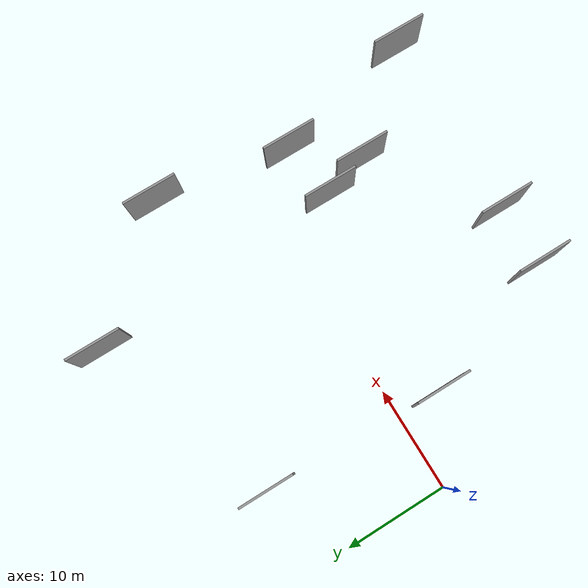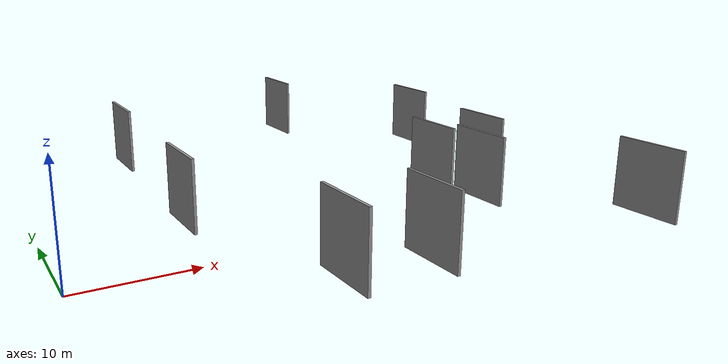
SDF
<sdf version="1.6">
 <world name="default">
  <scene>
   <sky><clouds><speed>12</speed></clouds></sky>
   <ambient>0.4 0.4 0.4 1</ambient>
   <background>0.7 0.7 0.7 1</background>
   <shadows>1</shadows>
  </scene>
  <gravity>0 0 -9.8066</gravity>
  <magnetic_field>6e-06 2.3e-05 -4.2e-05</magnetic_field>
  <physics default="0" name="default_physics" type="ode">
   <ode>
    <solver>
     <type>quick</type>
     <iters>10</iters>
     <sor>1.0</sor>
     <use_dynamic_moi_rescaling>0</use_dynamic_moi_rescaling>
    </solver>
    <constraints>
     <cfm>0</cfm>
     <erp>0.2</erp>
     <contact_max_correcting_vel>100</contact_max_correcting_vel>
     <contact_surface_layer>0.001</contact_surface_layer>
    </constraints>
   </ode>
   <max_step_size>0.004</max_step_size>
   <real_time_factor>1</real_time_factor>
   <real_time_update_rate>250</real_time_update_rate>
  </physics>
  <light name="sun" type="directional">
   <pose>0 0 10 0 0 0</pose>
   <diffuse>0.8 0.8 0.8 1</diffuse>
   <specular>0.2 0.2 0.2 1</specular>
   <attenuation>
    <range>1000</range>
    <constant>0.9</constant>
    <linear>0.01</linear>
    <quadratic>0.001</quadratic>
   </attenuation>
   <direction>-0.5 0.1 -0.9</direction>
  </light>
  <model name="grey_wall_1">
   <static>1</static>
   <pose>8.0669 12.9907 5.0 0.000000 0.000000 1.570796</pose>
   <link name="link">
    <pose>0 0 2.50 0 0 0</pose>
    <collision name="collision"><geometry><box><size>5.00 0.2 5.00</size></box></geometry></collision>
    <visual name="visual">
     <cast_shadows>0</cast_shadows>
     <geometry><box><size>5.00 0.2 5.00</size></box></geometry>
     <material>
      <script>
       <uri>model://grey_wall/materials/scripts</uri>
       <uri>model://grey_wall/materials/textures</uri>
       <name>vrc/grey_wall</name>
      </script>
     </material>
    </visual>
   </link>
  </model>
  <model name="grey_wall_2">
   <static>1</static>
   <pose>34.4512 8.5752 5.0 0.000000 0.000000 1.570796</pose>
   <link name="link">
    <pose>0 0 2.50 0 0 0</pose>
    <collision name="collision"><geometry><box><size>5.00 0.2 5.00</size></box></geometry></collision>
    <visual name="visual">
     <cast_shadows>0</cast_shadows>
     <geometry><box><size>5.00 0.2 5.00</size></box></geometry>
     <material>
      <script>
       <uri>model://grey_wall/materials/scripts</uri>
       <uri>model://grey_wall/materials/textures</uri>
       <name>vrc/grey_wall</name>
      </script>
     </material>
    </visual>
   </link>
  </model>
  <model name="grey_wall_3">
   <static>1</static>
   <pose>26.9604 -4.7573 5.0 0.000000 0.000000 1.570796</pose>
   <link name="link">
    <pose>0 0 2.50 0 0 0</pose>
    <collision name="collision"><geometry><box><size>5.00 0.2 5.00</size></box></geometry></collision>
    <visual name="visual">
     <cast_shadows>0</cast_shadows>
     <geometry><box><size>5.00 0.2 5.00</size></box></geometry>
     <material>
      <script>
       <uri>model://grey_wall/materials/scripts</uri>
       <uri>model://grey_wall/materials/textures</uri>
       <name>vrc/grey_wall</name>
      </script>
     </material>
    </visual>
   </link>
  </model>
  <model name="grey_wall_4">
   <static>1</static>
   <pose>17.9363 -16.5848 5.0 0.000000 0.000000 1.570796</pose>
   <link name="link">
    <pose>0 0 2.50 0 0 0</pose>
    <collision name="collision"><geometry><box><size>5.00 0.2 5.00</size></box></geometry></collision>
    <visual name="visual">
     <cast_shadows>0</cast_shadows>
     <geometry><box><size>5.00 0.2 5.00</size></box></geometry>
     <material>
      <script>
       <uri>model://grey_wall/materials/scripts</uri>
       <uri>model://grey_wall/materials/textures</uri>
       <name>vrc/grey_wall</name>
      </script>
     </material>
    </visual>
   </link>
  </model>
  <model name="grey_wall_5">
   <static>1</static>
   <pose>12.1232 -16.4571 5.0 0.000000 0.000000 1.570796</pose>
   <link name="link">
    <pose>0 0 2.50 0 0 0</pose>
    <collision name="collision"><geometry><box><size>5.00 0.2 5.00</size></box></geometry></collision>
    <visual name="visual">
     <cast_shadows>0</cast_shadows>
     <geometry><box><size>5.00 0.2 5.00</size></box></geometry>
     <material>
      <script>
       <uri>model://grey_wall/materials/scripts</uri>
       <uri>model://grey_wall/materials/textures</uri>
       <name>vrc/grey_wall</name>
      </script>
     </material>
    </visual>
   </link>
  </model>
  <model name="grey_wall_6">
   <static>1</static>
   <pose>35.6600 -17.2151 5.0 0.000000 0.000000 1.570796</pose>
   <link name="link">
    <pose>0 0 2.50 0 0 0</pose>
    <collision name="collision"><geometry><box><size>5.00 0.2 5.00</size></box></geometry></collision>
    <visual name="visual">
     <cast_shadows>0</cast_shadows>
     <geometry><box><size>5.00 0.2 5.00</size></box></geometry>
     <material>
      <script>
       <uri>model://grey_wall/materials/scripts</uri>
       <uri>model://grey_wall/materials/textures</uri>
       <name>vrc/grey_wall</name>
      </script>
     </material>
    </visual>
   </link>
  </model>
  <model name="grey_wall_7">
   <static>1</static>
   <pose>28.1884 -8.6883 5.0 0.000000 0.000000 1.570796</pose>
   <link name="link">
    <pose>0 0 2.50 0 0 0</pose>
    <collision name="collision"><geometry><box><size>5.00 0.2 5.00</size></box></geometry></collision>
    <visual name="visual">
     <cast_shadows>0</cast_shadows>
     <geometry><box><size>5.00 0.2 5.00</size></box></geometry>
     <material>
      <script>
       <uri>model://grey_wall/materials/scripts</uri>
       <uri>model://grey_wall/materials/textures</uri>
       <name>vrc/grey_wall</name>
      </script>
     </material>
    </visual>
   </link>
  </model>
  <model name="grey_wall_8">
   <static>1</static>
   <pose>25.4313 18.9708 5.0 0.000000 0.000000 1.570796</pose>
   <link name="link">
    <pose>0 0 2.50 0 0 0</pose>
    <collision name="collision"><geometry><box><size>5.00 0.2 5.00</size></box></geometry></collision>
    <visual name="visual">
     <cast_shadows>0</cast_shadows>
     <geometry><box><size>5.00 0.2 5.00</size></box></geometry>
     <material>
      <script>
       <uri>model://grey_wall/materials/scripts</uri>
       <uri>model://grey_wall/materials/textures</uri>
       <name>vrc/grey_wall</name>
      </script>
     </material>
    </visual>
   </link>
  </model>
  <model name="grey_wall_9">
   <static>1</static>
   <pose>32.4212 -3.9408 5.0 0.000000 0.000000 1.570796</pose>
   <link name="link">
    <pose>0 0 2.50 0 0 0</pose>
    <collision name="collision"><geometry><box><size>5.00 0.2 5.00</size></box></geometry></collision>
    <visual name="visual">
     <cast_shadows>0</cast_shadows>
     <geometry><box><size>5.00 0.2 5.00</size></box></geometry>
     <material>
      <script>
       <uri>model://grey_wall/materials/scripts</uri>
       <uri>model://grey_wall/materials/textures</uri>
       <name>vrc/grey_wall</name>
      </script>
     </material>
    </visual>
   </link>
  </model>
  <model name="grey_wall_10">
   <static>1</static>
   <pose>7.5052 -3.4045 5.0 0.000000 0.000000 1.570796</pose>
   <link name="link">
    <pose>0 0 2.50 0 0 0</pose>
    <collision name="collision"><geometry><box><size>5.00 0.2 5.00</size></box></geometry></collision>
    <visual name="visual">
     <cast_shadows>0</cast_shadows>
     <geometry><box><size>5.00 0.2 5.00</size></box></geometry>
     <material>
      <script>
       <uri>model://grey_wall/materials/scripts</uri>
       <uri>model://grey_wall/materials/textures</uri>
       <name>vrc/grey_wall</name>
      </script>
     </material>
    </visual>
   </link>
  </model>
 </world>
</sdf>
